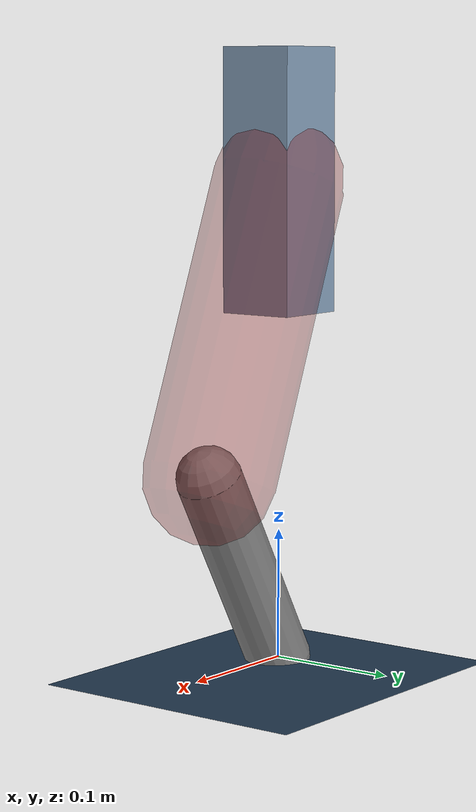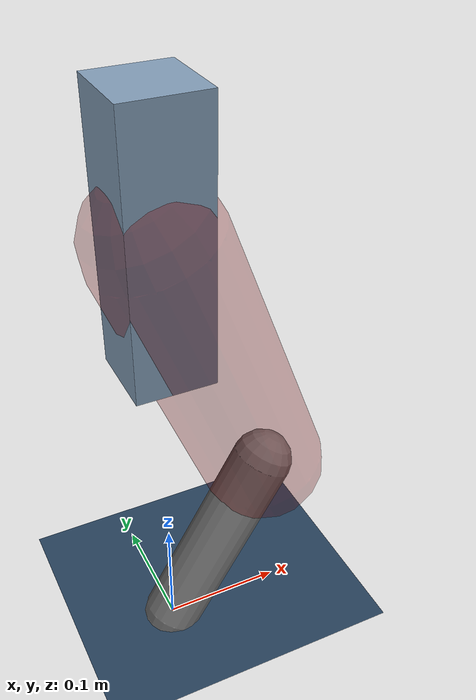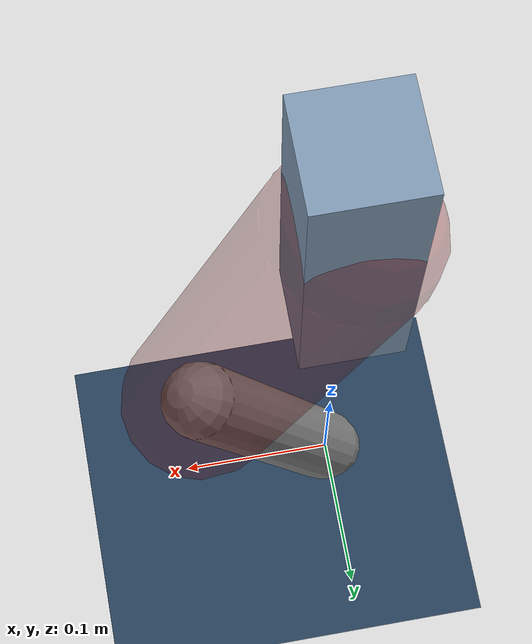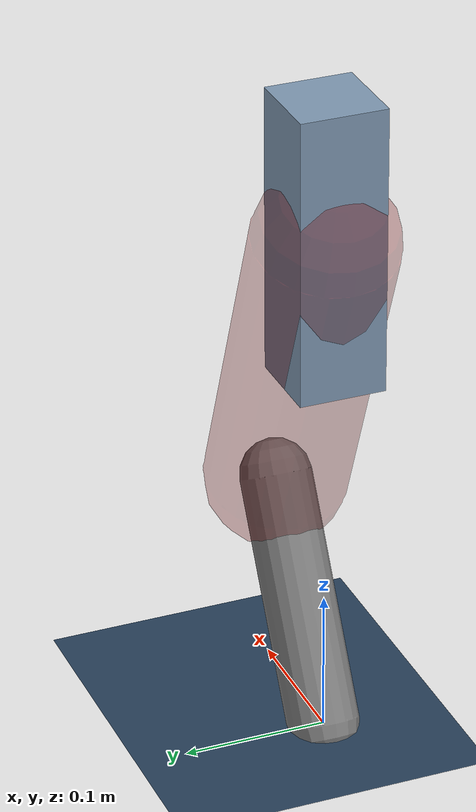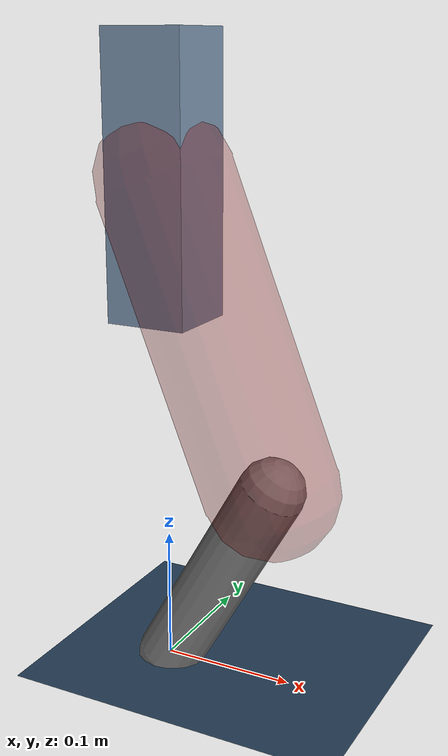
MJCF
<mujoco model="Hopper2D">
	<compiler inertiafromgeom="true" angle="radian" />
	<option timestep="0.001" integrator="implicit" cone="elliptic" solver="Newton" tolerance="1e-10" />

	<default>
		<geom contype="1" conaffinity="1" condim="3" friction="2 0.005 0.0001" solref="0.005 1" />
		<joint limited="true" damping="0.1" />
	</default>

	<asset>
		<texture name="skybox" type="skybox" builtin="gradient" rgb1=".4 .6 .8" rgb2="0 0 0" width="800" height="800" />
		<texture name="grid" type="2d" builtin="checker" rgb1=".1 .2 .3" rgb2=".2 .3 .4" width="300" height="300" mark="edge" markrgb=".2 .3 .4" />
		<material name="ground" texture="grid" texrepeat="1 1" texuniform="true" reflectance="0.1" />
		<material name="leg" rgba="0.5 0.6 0.7 1" />
	</asset>

	<worldbody>

		<geom name="floor" type="plane" size="5 5 0.25" material="ground" />

		<light directional="false" diffuse="0.8 0.8 0.8" specular="0.3 0.3 0.3" pos="0 0 2" dir="0 0 -1" />
		<light mode="targetbodycom" target="base" directional="false" diffuse="0.8 0.8 0.8" specular="0.3 0.3 0.3" pos="0 0 2" dir="0 0 -1" />

		<camera name="fixed" pos="0 -2 1" xyaxes="1 0 0 0 0 1" />
		<camera name="tracking" mode="trackcom" pos="0 -3 1" />

		<body name="root" pos="0 0 0.36801628494585004">
			<joint name="slide_x" type="slide" axis="1 0 0" range="-100 100" />
			<joint name="slide_z" type="slide" axis="0 0 1" range="0 10" />

			<body name="base" pos="0 0 0">
				<geom name="torso" type="box" size="0.03 0.03 0.1" mass="2.66" material="leg" />

				<body name="link1" pos="0 0 0" euler="0 1.1960205668177903 0">
					<joint type="hinge" axis="0 -1 0" pos="0 0 0" name="hinge1" limited="true" range="-3.14 3.14" stiffness="0" damping="0.1" />
					<geom name="thigh" type="capsule" fromto="0 0 0 0.23309870652486933 0 0" size="0.05" rgba="0.5 0 0 0.3" mass="0.8129467663121733" />

					<body name="link2" pos="0.23309870652486933 0 0" euler="0 0.8888575696360873 0">
						<joint type="hinge" axis="0 -1 0" pos="0 0 0" name="hinge2" limited="true" range="-3.14 3.14" stiffness="0" damping="0.1" />
						<geom name="shank" type="capsule" fromto="0 0 0 0.17352622446040267 0 0" size="0.025" mass="0.3783209795683221" />

					</body>
				</body>
			</body>
		</body>
	</worldbody>

	<actuator>
		<motor name="torque1" joint="hinge1" ctrlrange="-107.2752844764143 107.2752844764143" ctrllimited="true" gear="1" />
		<motor name="torque2" joint="hinge2" ctrlrange="-26.056531705565387 26.056531705565387" ctrllimited="true" gear="1" />
	</actuator>
</mujoco>
